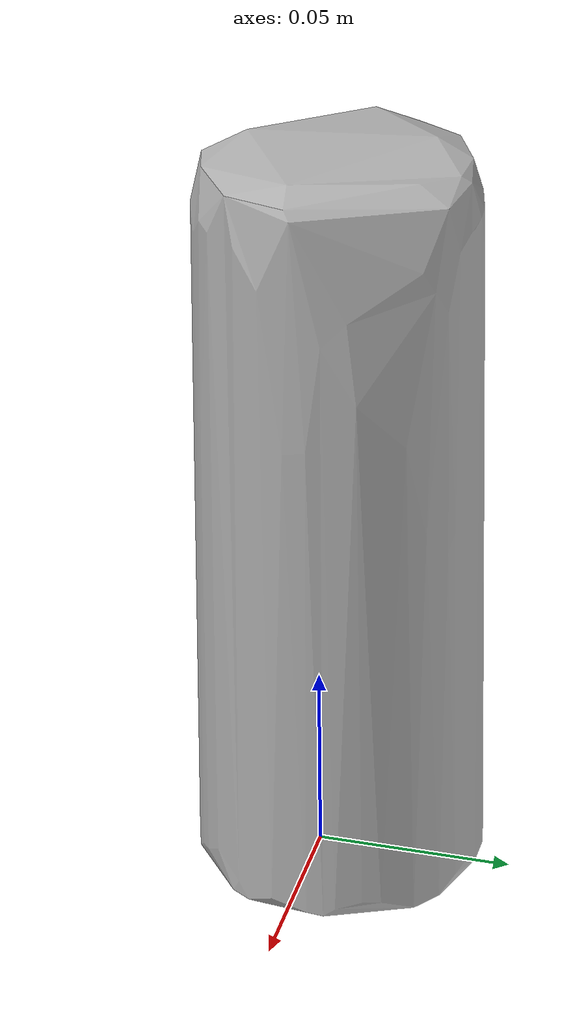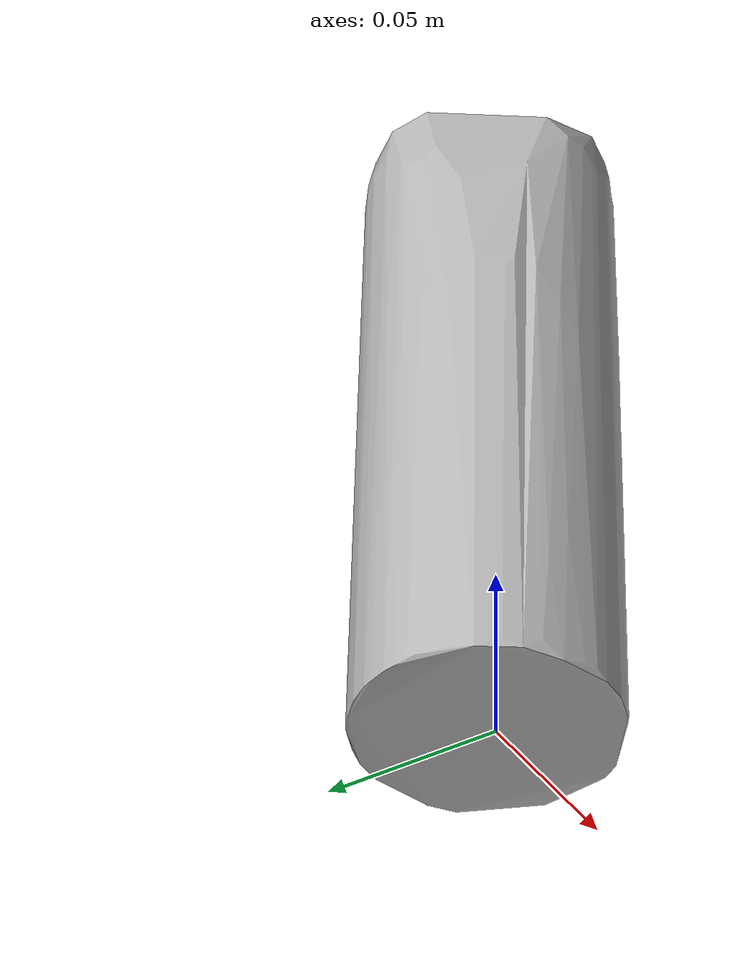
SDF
<?xml version='1.0'?>
<sdf version="1.4">
  <model name="krylon_low_odor_clear_finish">
    <static>false</static>
    <link name="link">
      <inertial>
        <pose>0.009751142822902058 0.007329595362351387 0.09814852818779038 -3.1360676961765472 -0.0014978122571822875 -2.9447732877250368</pose>
        <mass>0.0744533500547743</mass>
        <inertia>
          <ixx>0.0002489524800309209</ixx>
          <ixy>5.132000016280943e-20</ixy>
          <ixz>3.326413238351092e-21</ixz>
          <iyy>0.0002472809948286972</iyy>
          <iyz>-1.1440688538469762e-20</iyz>
          <izz>4.60463220153078e-05</izz>
        </inertia>
      </inertial>
      <collision name="collision">
        <geometry>
          <mesh>
            <!-- Use a downsampled mesh for collisions -->
            <uri>model:///krylon_low_odor_clear_finish/krylon_low_odor_clear_finish_250_collision.obj</uri>
	        </mesh>
        </geometry>
        <surface>
      </surface>
      </collision>
      <visual name="visual">
        <geometry>
          <mesh>
            <uri>model:///krylon_low_odor_clear_finish/optimized_tsdf_texture_mapped_mesh.obj</uri>
	        </mesh>
        </geometry>
        <material>
          <script>
            <uri>model:///krylon_low_odor_clear_finish/krylon_low_odor_clear_finish.material</uri>
            <name>krylon_low_odor_clear_finish</name>
          </script>
        </material>
      </visual>
    </link>
  </model>
</sdf>
